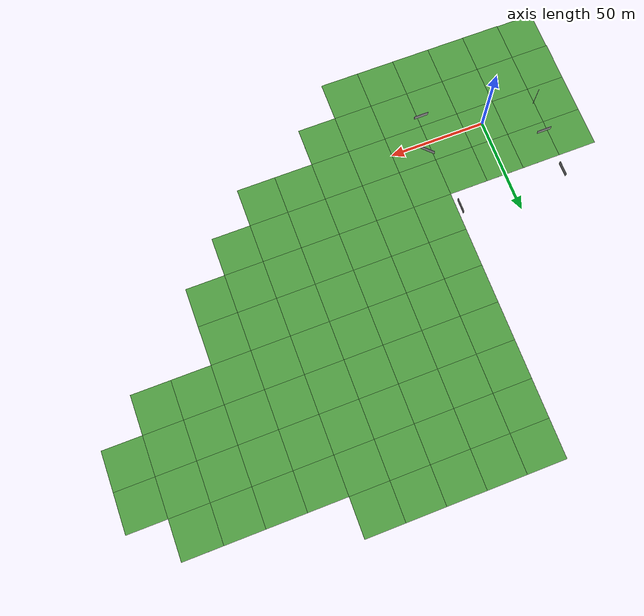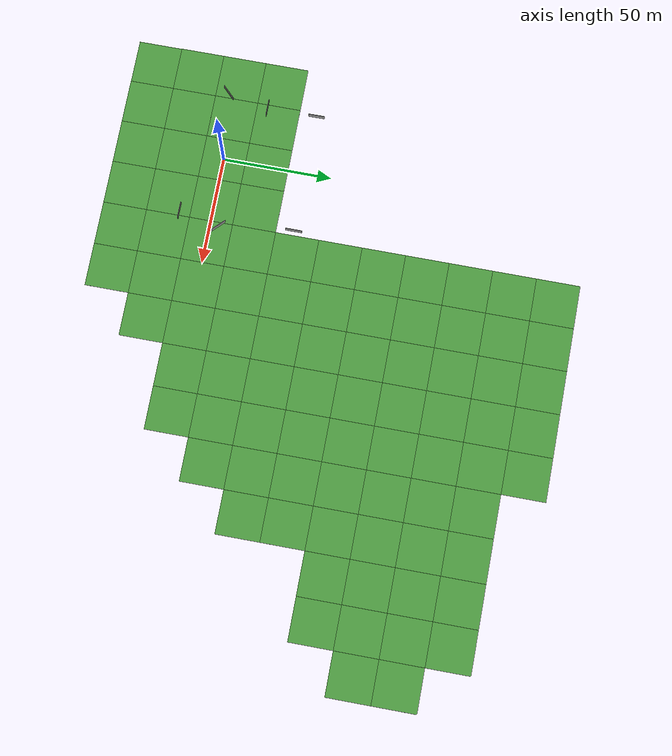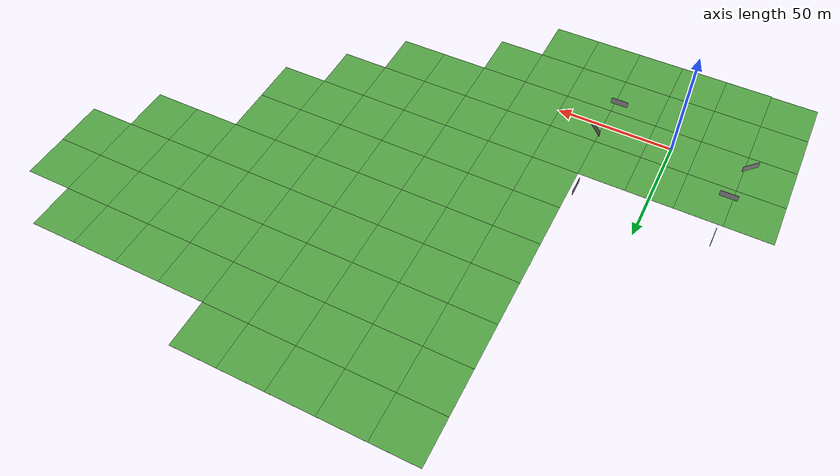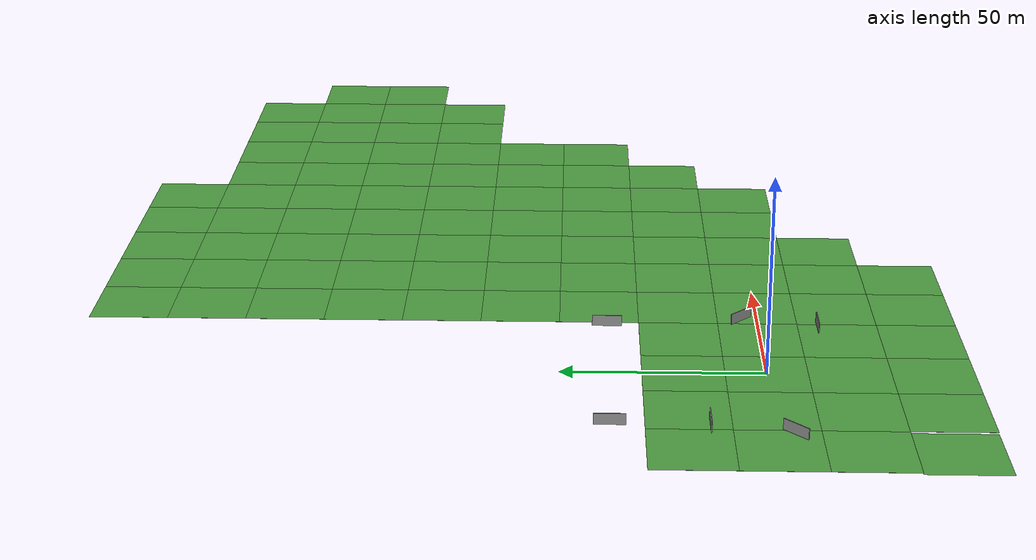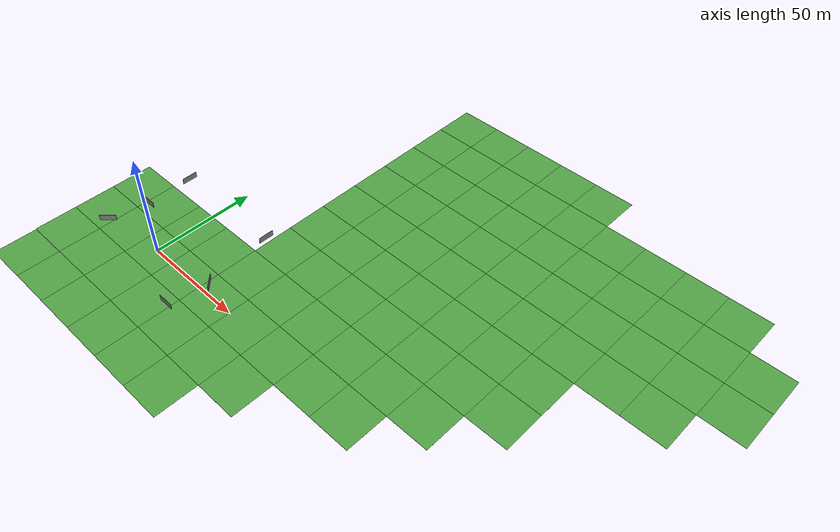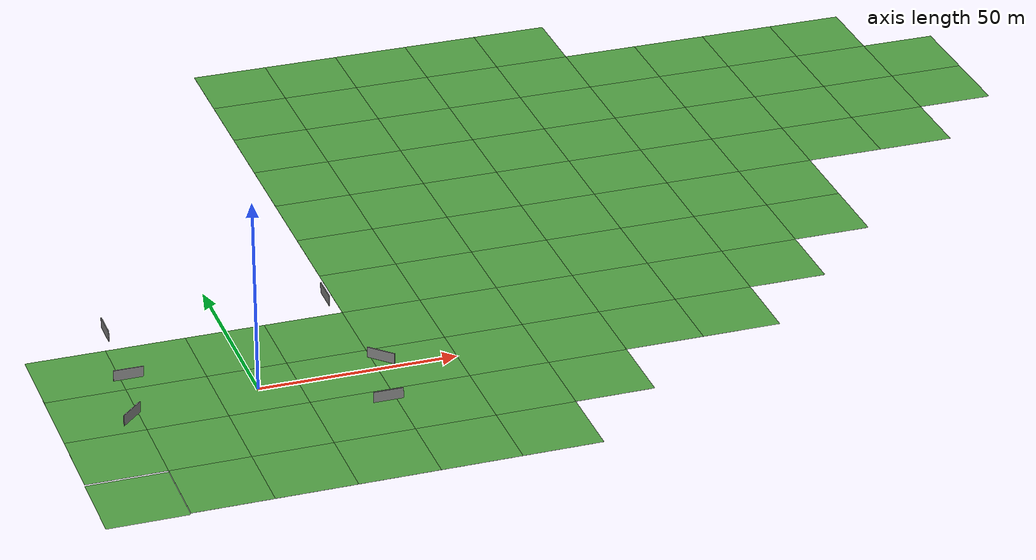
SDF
<sdf version="1.7">
 <world name="mrs_city_simplified">
  <spherical_coordinates>
   <surface_model>EARTH_WGS84</surface_model>
   <latitude_deg>47.3977</latitude_deg>
   <longitude_deg>8.54559</longitude_deg>
   <elevation>0</elevation>
   <heading_deg>0</heading_deg>
  </spherical_coordinates>
  <physics name="default_physics" default="1" type="ode">
   <ode>
    <solver><type>quick</type><iters>10</iters><sor>1.3</sor></solver>
    <constraints>
     <cfm>0</cfm>
     <erp>0.2</erp>
     <contact_max_correcting_vel>1000</contact_max_correcting_vel>
     <contact_surface_layer>0.001</contact_surface_layer>
    </constraints>
   </ode>
   <max_step_size>0.004</max_step_size>
   <real_time_factor>1</real_time_factor>
   <real_time_update_rate>250</real_time_update_rate>
  </physics>
  <scene><shadows>false</shadows><ambient>0.4 0.4 0.4 1</ambient><background>0.7 0.7 0.7 1</background></scene>
  <gravity>0 0 -9.8066</gravity>
  <magnetic_field>6e-06 2.3e-05 -4.2e-05</magnetic_field>
  <atmosphere type="adiabatic"/>
  <light name="sun" type="directional">
   <pose>0 0 1000 0.4 0.2 0</pose>
   <diffuse>1 1 1 1</diffuse>
   <specular>0.6 0.6 0.6 1</specular>
   <direction>0.1 0.1 -0.9</direction>
   <attenuation>
    <range>20</range>
    <constant>0.5</constant>
    <linear>0.01</linear>
    <quadratic>0.001</quadratic>
   </attenuation>
  </light>
  <include><name>grass_plane</name><uri>model://grass_plane</uri></include>
  <include><name>wall_north</name><uri>model://grey_wall</uri><pose>-28 15 0 0 0 0</pose></include>
  <include><name>wall_south</name><uri>model://grey_wall</uri><pose>28 -15 0 0 0 0</pose></include>
  <include><name>wall_west</name><uri>model://grey_wall</uri><pose>-28 38 0 0 0 1.5708</pose></include>
  <include><name>wall_east</name><uri>model://grey_wall</uri><pose>28 38 0 0 0 1.5708</pose></include>
  <include><name>wall_gate_west</name><uri>model://grey_wall</uri><pose>-32 -4 0 0 0 0.7854</pose></include>
  <include><name>wall_gate_east</name><uri>model://grey_wall</uri><pose>32 4 0 0 0 -0.7854</pose></include>
 </world>
</sdf>

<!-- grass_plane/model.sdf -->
<sdf version='1.4'>
  <model name='grass_plane'>
    <static>true</static>
    <link name='link'>
      <collision name='collision'>
        <geometry>
          <plane>
            <normal>0 0 1</normal>
            <size>500 500</size>
          </plane>
        </geometry>
        <surface>
          <friction>
            <ode>
              <mu>0.5</mu>
              <mu2>.5</mu2>
            </ode>
          </friction>
        </surface>
      </collision>

      <visual name='visual_0'>
        <pose>-40 -40 0 0 0 0</pose>

        <cast_shadows>false</cast_shadows>
        <geometry>
          <plane>
            <normal>0 0 1</normal>
            <size>20 20</size>
          </plane>
        </geometry>
        <material>
          <script>
            <uri>model://../model_source/models/grass_plane/materials/scripts</uri>
            <uri>model://../model_source/models/grass_plane/materials/textures</uri>
            <name>vrc/grass</name>
          </script>
        </material>
      </visual>

      <visual name='visual_1'>
        <pose>-20 -40 0 0 0 0</pose>

        <cast_shadows>false</cast_shadows>
        <geometry>
          <plane>
            <normal>0 0 1</normal>
            <size>20 20</size>
          </plane>
        </geometry>
        <material>
          <script>
            <uri>model://../model_source/models/grass_plane/materials/scripts</uri>
            <uri>model://../model_source/models/grass_plane/materials/textures</uri>
            <name>vrc/grass</name>
          </script>
        </material>
      </visual>

      <visual name='visual_2'>
        <pose>0 -40 0 0 0 0</pose>

        <cast_shadows>false</cast_shadows>
        <geometry>
          <plane>
            <normal>0 0 1</normal>
            <size>20 20</size>
          </plane>
        </geometry>
        <material>
          <script>
            <uri>model://../model_source/models/grass_plane/materials/scripts</uri>
            <uri>model://../model_source/models/grass_plane/materials/textures</uri>
            <name>vrc/grass</name>
          </script>
        </material>
      </visual>

      <visual name='visual_3'>
        <pose>20 -40 0 0 0 0</pose>

        <cast_shadows>false</cast_shadows>
        <geometry>
          <plane>
            <normal>0 0 1</normal>
            <size>20 20</size>
          </plane>
        </geometry>
        <material>
          <script>
            <uri>model://../model_source/models/grass_plane/materials/scripts</uri>
            <uri>model://../model_source/models/grass_plane/materials/textures</uri>
            <name>vrc/grass</name>
          </script>
        </material>
      </visual>

      <visual name='visual_4'>
        <pose>40 -40 0 0 0 0</pose>

        <cast_shadows>false</cast_shadows>
        <geometry>
          <plane>
            <normal>0 0 1</normal>
            <size>20 20</size>
          </plane>
        </geometry>
        <material>
          <script>
            <uri>model://../model_source/models/grass_plane/materials/scripts</uri>
            <uri>model://../model_source/models/grass_plane/materials/textures</uri>
            <name>vrc/grass</name>
          </script>
        </material>
      </visual>

      <visual name='visual_5'>
        <pose>60 -40 0 0 0 0</pose>

        <cast_shadows>false</cast_shadows>
        <geometry>
          <plane>
            <normal>0 0 1</normal>
            <size>20 20</size>
          </plane>
        </geometry>
        <material>
          <script>
            <uri>model://../model_source/models/grass_plane/materials/scripts</uri>
            <uri>model://../model_source/models/grass_plane/materials/textures</uri>
            <name>vrc/grass</name>
          </script>
        </material>
      </visual>

      <visual name='visual_6'>
        <pose>-40 -20 0 0 0 0</pose>

        <cast_shadows>false</cast_shadows>
        <geometry>
          <plane>
            <normal>0 0 1</normal>
            <size>20 20</size>
          </plane>
        </geometry>
        <material>
          <script>
            <uri>model://../model_source/models/grass_plane/materials/scripts</uri>
            <uri>model://../model_source/models/grass_plane/materials/textures</uri>
            <name>vrc/grass</name>
          </script>
        </material>
      </visual>

      <visual name='visual_7'>
        <pose>-20 -20 0 0 0 0</pose>

        <cast_shadows>false</cast_shadows>
        <geometry>
          <plane>
            <normal>0 0 1</normal>
            <size>20 20</size>
          </plane>
        </geometry>
        <material>
          <script>
            <uri>model://../model_source/models/grass_plane/materials/scripts</uri>
            <uri>model://../model_source/models/grass_plane/materials/textures</uri>
            <name>vrc/grass</name>
          </script>
        </material>
      </visual>

      <visual name='visual_8'>
        <pose>0 -20 0 0 0 0</pose>

        <cast_shadows>false</cast_shadows>
        <geometry>
          <plane>
            <normal>0 0 1</normal>
            <size>20 20</size>
          </plane>
        </geometry>
        <material>
          <script>
            <uri>model://../model_source/models/grass_plane/materials/scripts</uri>
            <uri>model://../model_source/models/grass_plane/materials/textures</uri>
            <name>vrc/grass</name>
          </script>
        </material>
      </visual>

      <visual name='visual_9'>
        <pose>20 -20 0 0 0 0</pose>

        <cast_shadows>false</cast_shadows>
        <geometry>
          <plane>
            <normal>0 0 1</normal>
            <size>20 20</size>
          </plane>
        </geometry>
        <material>
          <script>
            <uri>model://../model_source/models/grass_plane/materials/scripts</uri>
            <uri>model://../model_source/models/grass_plane/materials/textures</uri>
            <name>vrc/grass</name>
          </script>
        </material>
      </visual>

      <visual name='visual_10'>
        <pose>40 -20 0 0 0 0</pose>

        <cast_shadows>false</cast_shadows>
        <geometry>
          <plane>
            <normal>0 0 1</normal>
            <size>20 20</size>
          </plane>
        </geometry>
        <material>
          <script>
            <uri>model://../model_source/models/grass_plane/materials/scripts</uri>
            <uri>model://../model_source/models/grass_plane/materials/textures</uri>
            <name>vrc/grass</name>
          </script>
        </material>
      </visual>

      <visual name='visual_11'>
        <pose>60 -20 0 0 0 0</pose>

        <cast_shadows>false</cast_shadows>
        <geometry>
          <plane>
            <normal>0 0 1</normal>
            <size>20 20</size>
          </plane>
        </geometry>
        <material>
          <script>
            <uri>model://../model_source/models/grass_plane/materials/scripts</uri>
            <uri>model://../model_source/models/grass_plane/materials/textures</uri>
            <name>vrc/grass</name>
          </script>
        </material>
      </visual>

      <visual name='visual_12'>
        <pose>80 -20 0 0 0 0</pose>

        <cast_shadows>false</cast_shadows>
        <geometry>
          <plane>
            <normal>0 0 1</normal>
            <size>20 20</size>
          </plane>
        </geometry>
        <material>
          <script>
            <uri>model://../model_source/models/grass_plane/materials/scripts</uri>
            <uri>model://../model_source/models/grass_plane/materials/textures</uri>
            <name>vrc/grass</name>
          </script>
        </material>
      </visual>

      <visual name='visual_13'>
        <pose>-40 0 0 0 0 0</pose>

        <cast_shadows>false</cast_shadows>
        <geometry>
          <plane>
            <normal>0 0 1</normal>
            <size>20 20</size>
          </plane>
        </geometry>
        <material>
          <script>
            <uri>model://../model_source/models/grass_plane/materials/scripts</uri>
            <uri>model://../model_source/models/grass_plane/materials/textures</uri>
            <name>vrc/grass</name>
          </script>
        </material>
      </visual>

      <visual name='visual_14'>
        <pose>-20 0 0 0 0 0</pose>

        <cast_shadows>false</cast_shadows>
        <geometry>
          <plane>
            <normal>0 0 1</normal>
            <size>20 20</size>
          </plane>
        </geometry>
        <material>
          <script>
            <uri>model://../model_source/models/grass_plane/materials/scripts</uri>
            <uri>model://../model_source/models/grass_plane/materials/textures</uri>
            <name>vrc/grass</name>
          </script>
        </material>
      </visual>

      <visual name='visual_15'>
        <pose>0 0 0 0 0 0</pose>

        <cast_shadows>false</cast_shadows>
        <geometry>
          <plane>
            <normal>0 0 1</normal>
            <size>20 20</size>
          </plane>
        </geometry>
        <material>
          <script>
            <uri>model://../model_source/models/grass_plane/materials/scripts</uri>
            <uri>model://../model_source/models/grass_plane/materials/textures</uri>
            <name>vrc/grass</name>
          </script>
        </material>
      </visual>

      <visual name='visual_16'>
        <pose>20 0 0 0 0 0</pose>

        <cast_shadows>false</cast_shadows>
        <geometry>
          <plane>
            <normal>0 0 1</normal>
            <size>20 20</size>
          </plane>
        </geometry>
        <material>
          <script>
            <uri>model://../model_source/models/grass_plane/materials/scripts</uri>
            <uri>model://../model_source/models/grass_plane/materials/textures</uri>
            <name>vrc/grass</name>
          </script>
        </material>
      </visual>

      <visual name='visual_17'>
        <pose>40 0 0 0 0 0</pose>

        <cast_shadows>false</cast_shadows>
        <geometry>
          <plane>
            <normal>0 0 1</normal>
            <size>20 20</size>
          </plane>
        </geometry>
        <material>
          <script>
            <uri>model://../model_source/models/grass_plane/materials/scripts</uri>
            <uri>model://../model_source/models/grass_plane/materials/textures</uri>
            <name>vrc/grass</name>
          </script>
        </material>
      </visual>

      <visual name='visual_18'>
        <pose>60 0 0 0 0 0</pose>

        <cast_shadows>false</cast_shadows>
        <geometry>
          <plane>
            <normal>0 0 1</normal>
            <size>20 20</size>
          </plane>
        </geometry>
        <material>
          <script>
            <uri>model://../model_source/models/grass_plane/materials/scripts</uri>
            <uri>model://../model_source/models/grass_plane/materials/textures</uri>
            <name>vrc/grass</name>
          </script>
        </material>
      </visual>

      <visual name='visual_19'>
        <pose>80 0 0 0 0 0</pose>

        <cast_shadows>false</cast_shadows>
        <geometry>
          <plane>
            <normal>0 0 1</normal>
            <size>20 20</size>
          </plane>
        </geometry>
        <material>
          <script>
            <uri>model://../model_source/models/grass_plane/materials/scripts</uri>
            <uri>model://../model_source/models/grass_plane/materials/textures</uri>
            <name>vrc/grass</name>
          </script>
        </material>
      </visual>

      <visual name='visual_20'>
        <pose>100 0 0 0 0 0</pose>

        <cast_shadows>false</cast_shadows>
        <geometry>
          <plane>
            <normal>0 0 1</normal>
            <size>20 20</size>
          </plane>
        </geometry>
        <material>
          <script>
            <uri>model://../model_source/models/grass_plane/materials/scripts</uri>
            <uri>model://../model_source/models/grass_plane/materials/textures</uri>
            <name>vrc/grass</name>
          </script>
        </material>
      </visual>

      <visual name='visual_21'>
        <pose>120 0 0 0 0 0</pose>

        <cast_shadows>false</cast_shadows>
        <geometry>
          <plane>
            <normal>0 0 1</normal>
            <size>20 20</size>
          </plane>
        </geometry>
        <material>
          <script>
            <uri>model://../model_source/models/grass_plane/materials/scripts</uri>
            <uri>model://../model_source/models/grass_plane/materials/textures</uri>
            <name>vrc/grass</name>
          </script>
        </material>
      </visual>

      <visual name='visual_22'>
        <pose>-40 20 0 0 0 0</pose>

        <cast_shadows>false</cast_shadows>
        <geometry>
          <plane>
            <normal>0 0 1</normal>
            <size>20 20</size>
          </plane>
        </geometry>
        <material>
          <script>
            <uri>model://../model_source/models/grass_plane/materials/scripts</uri>
            <uri>model://../model_source/models/grass_plane/materials/textures</uri>
            <name>vrc/grass</name>
          </script>
        </material>
      </visual>

      <visual name='visual_23'>
        <pose>-20 20 0 0 0 0</pose>

        <cast_shadows>false</cast_shadows>
        <geometry>
          <plane>
            <normal>0 0 1</normal>
            <size>20 20</size>
          </plane>
        </geometry>
        <material>
          <script>
            <uri>model://../model_source/models/grass_plane/materials/scripts</uri>
            <uri>model://../model_source/models/grass_plane/materials/textures</uri>
            <name>vrc/grass</name>
          </script>
        </material>
      </visual>

      <visual name='visual_24'>
        <pose>0 20 0 0 0 0</pose>

        <cast_shadows>false</cast_shadows>
        <geometry>
          <plane>
            <normal>0 0 1</normal>
            <size>20 20</size>
          </plane>
        </geometry>
        <material>
          <script>
            <uri>model://../model_source/models/grass_plane/materials/scripts</uri>
            <uri>model://../model_source/models/grass_plane/materials/textures</uri>
            <name>vrc/grass</name>
          </script>
        </material>
      </visual>

      <visual name='visual_25'>
        <pose>20 20 0 0 0 0</pose>

        <cast_shadows>false</cast_shadows>
        <geometry>
          <plane>
            <normal>0 0 1</normal>
            <size>20 20</size>
          </plane>
        </geometry>
        <material>
          <script>
            <uri>model://../model_source/models/grass_plane/materials/scripts</uri>
            <uri>model://../model_source/models/grass_plane/materials/textures</uri>
            <name>vrc/grass</name>
          </script>
        </material>
      </visual>

      <visual name='visual_26'>
        <pose>40 20 0 0 0 0</pose>

        <cast_shadows>false</cast_shadows>
        <geometry>
          <plane>
            <normal>0 0 1</normal>
            <size>20 20</size>
          </plane>
        </geometry>
        <material>
          <script>
            <uri>model://../model_source/models/grass_plane/materials/scripts</uri>
            <uri>model://../model_source/models/grass_plane/materials/textures</uri>
            <name>vrc/grass</name>
          </script>
        </material>
      </visual>

      <visual name='visual_27'>
        <pose>60 20 0 0 0 0</pose>

        <cast_shadows>false</cast_shadows>
        <geometry>
          <plane>
            <normal>0 0 1</normal>
            <size>20 20</size>
          </plane>
        </geometry>
        <material>
          <script>
            <uri>model://../model_source/models/grass_plane/materials/scripts</uri>
            <uri>model://../model_source/models/grass_plane/materials/textures</uri>
            <name>vrc/grass</name>
          </script>
        </material>
      </visual>

      <visual name='visual_28'>
        <pose>80 20 0 0 0 0</pose>

        <cast_shadows>false</cast_shadows>
        <geometry>
          <plane>
            <normal>0 0 1</normal>
            <size>20 20</size>
          </plane>
        </geometry>
        <material>
          <script>
            <uri>model://../model_source/models/grass_plane/materials/scripts</uri>
            <uri>model://../model_source/models/grass_plane/materials/textures</uri>
            <name>vrc/grass</name>
          </script>
        </material>
      </visual>

      <visual name='visual_29'>
        <pose>100 20 0 0 0 0</pose>

        <cast_shadows>false</cast_shadows>
        <geometry>
          <plane>
            <normal>0 0 1</normal>
            <size>20 20</size>
          </plane>
        </geometry>
        <material>
          <script>
            <uri>model://../model_source/models/grass_plane/materials/scripts</uri>
            <uri>model://../model_source/models/grass_plane/materials/textures</uri>
            <name>vrc/grass</name>
          </script>
        </material>
      </visual>

      <visual name='visual_30'>
        <pose>120 20 0 0 0 0</pose>

        <cast_shadows>false</cast_shadows>
        <geometry>
          <plane>
            <normal>0 0 1</normal>
            <size>20 20</size>
          </plane>
        </geometry>
        <material>
          <script>
            <uri>model://../model_source/models/grass_plane/materials/scripts</uri>
            <uri>model://../model_source/models/grass_plane/materials/textures</uri>
            <name>vrc/grass</name>
          </script>
        </material>
      </visual>

      <visual name='visual_31'>
        <pose>140 20 0 0 0 0</pose>

        <cast_shadows>false</cast_shadows>
        <geometry>
          <plane>
            <normal>0 0 1</normal>
            <size>20 20</size>
          </plane>
        </geometry>
        <material>
          <script>
            <uri>model://../model_source/models/grass_plane/materials/scripts</uri>
            <uri>model://../model_source/models/grass_plane/materials/textures</uri>
            <name>vrc/grass</name>
          </script>
        </material>
      </visual>

      <visual name='visual_32'>
        <pose>40 40 0 0 0 0</pose>

        <cast_shadows>false</cast_shadows>
        <geometry>
          <plane>
            <normal>0 0 1</normal>
            <size>20 20</size>
          </plane>
        </geometry>
        <material>
          <script>
            <uri>model://../model_source/models/grass_plane/materials/scripts</uri>
            <uri>model://../model_source/models/grass_plane/materials/textures</uri>
            <name>vrc/grass</name>
          </script>
        </material>
      </visual>

      <visual name='visual_33'>
        <pose>60 40 0 0 0 0</pose>

        <cast_shadows>false</cast_shadows>
        <geometry>
          <plane>
            <normal>0 0 1</normal>
            <size>20 20</size>
          </plane>
        </geometry>
        <material>
          <script>
            <uri>model://../model_source/models/grass_plane/materials/scripts</uri>
            <uri>model://../model_source/models/grass_plane/materials/textures</uri>
            <name>vrc/grass</name>
          </script>
        </material>
      </visual>

      <visual name='visual_34'>
        <pose>80 40 0 0 0 0</pose>

        <cast_shadows>false</cast_shadows>
        <geometry>
          <plane>
            <normal>0 0 1</normal>
            <size>20 20</size>
          </plane>
        </geometry>
        <material>
          <script>
            <uri>model://../model_source/models/grass_plane/materials/scripts</uri>
            <uri>model://../model_source/models/grass_plane/materials/textures</uri>
            <name>vrc/grass</name>
          </script>
        </material>
      </visual>

      <visual name='visual_35'>
        <pose>100 40 0 0 0 0</pose>

        <cast_shadows>false</cast_shadows>
        <geometry>
          <plane>
            <normal>0 0 1</normal>
            <size>20 20</size>
          </plane>
        </geometry>
        <material>
          <script>
            <uri>model://../model_source/models/grass_plane/materials/scripts</uri>
            <uri>model://../model_source/models/grass_plane/materials/textures</uri>
            <name>vrc/grass</name>
          </script>
        </material>
      </visual>

      <visual name='visual_36'>
        <pose>120 40 0 0 0 0</pose>

        <cast_shadows>false</cast_shadows>
        <geometry>
          <plane>
            <normal>0 0 1</normal>
            <size>20 20</size>
          </plane>
        </geometry>
        <material>
          <script>
            <uri>model://../model_source/models/grass_plane/materials/scripts</uri>
            <uri>model://../model_source/models/grass_plane/materials/textures</uri>
            <name>vrc/grass</name>
          </script>
        </material>
      </visual>

      <visual name='visual_37'>
        <pose>140 40 0 0 0 0</pose>

        <cast_shadows>false</cast_shadows>
        <geometry>
          <plane>
            <normal>0 0 1</normal>
            <size>20 20</size>
          </plane>
        </geometry>
        <material>
          <script>
            <uri>model://../model_source/models/grass_plane/materials/scripts</uri>
            <uri>model://../model_source/models/grass_plane/materials/textures</uri>
            <name>vrc/grass</name>
          </script>
        </material>
      </visual>

      <visual name='visual_38'>
        <pose>160 40 0 0 0 0</pose>

        <cast_shadows>false</cast_shadows>
        <geometry>
          <plane>
            <normal>0 0 1</normal>
            <size>20 20</size>
          </plane>
        </geometry>
        <material>
          <script>
            <uri>model://../model_source/models/grass_plane/materials/scripts</uri>
            <uri>model://../model_source/models/grass_plane/materials/textures</uri>
            <name>vrc/grass</name>
          </script>
        </material>
      </visual>

      <visual name='visual_39'>
        <pose>40 60 0 0 0 0</pose>

        <cast_shadows>false</cast_shadows>
        <geometry>
          <plane>
            <normal>0 0 1</normal>
            <size>20 20</size>
          </plane>
        </geometry>
        <material>
          <script>
            <uri>model://../model_source/models/grass_plane/materials/scripts</uri>
            <uri>model://../model_source/models/grass_plane/materials/textures</uri>
            <name>vrc/grass</name>
          </script>
        </material>
      </visual>

      <visual name='visual_40'>
        <pose>60 60 0 0 0 0</pose>

        <cast_shadows>false</cast_shadows>
        <geometry>
          <plane>
            <normal>0 0 1</normal>
            <size>20 20</size>
          </plane>
        </geometry>
        <material>
          <script>
            <uri>model://../model_source/models/grass_plane/materials/scripts</uri>
            <uri>model://../model_source/models/grass_plane/materials/textures</uri>
            <name>vrc/grass</name>
          </script>
        </material>
      </visual>

      <visual name='visual_41'>
        <pose>80 60 0 0 0 0</pose>

        <cast_shadows>false</cast_shadows>
        <geometry>
          <plane>
            <normal>0 0 1</normal>
            <size>20 20</size>
          </plane>
        </geometry>
        <material>
          <script>
            <uri>model://../model_source/models/grass_plane/materials/scripts</uri>
            <uri>model://../model_source/models/grass_plane/materials/textures</uri>
            <name>vrc/grass</name>
          </script>
        </material>
      </visual>

      <visual name='visual_42'>
        <pose>100 60 0 0 0 0</pose>

        <cast_shadows>false</cast_shadows>
        <geometry>
          <plane>
            <normal>0 0 1</normal>
            <size>20 20</size>
          </plane>
        </geometry>
        <material>
          <script>
            <uri>model://../model_source/models/grass_plane/materials/scripts</uri>
            <uri>model://../model_source/models/grass_plane/materials/textures</uri>
            <name>vrc/grass</name>
          </script>
        </material>
      </visual>

      <visual name='visual_43'>
        <pose>120 60 0 0 0 0</pose>

        <cast_shadows>false</cast_shadows>
        <geometry>
          <plane>
            <normal>0 0 1</normal>
            <size>20 20</size>
          </plane>
        </geometry>
        <material>
          <script>
            <uri>model://../model_source/models/grass_plane/materials/scripts</uri>
            <uri>model://../model_source/models/grass_plane/materials/textures</uri>
            <name>vrc/grass</name>
          </script>
        </material>
      </visual>

      <visual name='visual_44'>
        <pose>140 60 0 0 0 0</pose>

        <cast_shadows>false</cast_shadows>
        <geometry>
          <plane>
            <normal>0 0 1</normal>
            <size>20 20</size>
          </plane>
        </geometry>
        <material>
          <script>
            <uri>model://../model_source/models/grass_plane/materials/scripts</uri>
            <uri>model://../model_source/models/grass_plane/materials/textures</uri>
            <name>vrc/grass</name>
          </script>
        </material>
      </visual>

      <visual name='visual_45'>
        <pose>160 60 0 0 0 0</pose>

        <cast_shadows>false</cast_shadows>
        <geometry>
          <plane>
            <normal>0 0 1</normal>
            <size>20 20</size>
          </plane>
        </geometry>
        <material>
          <script>
            <uri>model://../model_source/models/grass_plane/materials/scripts</uri>
            <uri>model://../model_source/models/grass_plane/materials/textures</uri>
            <name>vrc/grass</name>
          </script>
        </material>
      </visual>

      <visual name='visual_46'>
        <pose>40 80 0 0 0 0</pose>

        <cast_shadows>false</cast_shadows>
        <geometry>
          <plane>
            <normal>0 0 1</normal>
            <size>20 20</size>
          </plane>
        </geometry>
        <material>
          <script>
            <uri>model://../model_source/models/grass_plane/materials/scripts</uri>
            <uri>model://../model_source/models/grass_plane/materials/textures</uri>
            <name>vrc/grass</name>
          </script>
        </material>
      </visual>

      <visual name='visual_47'>
        <pose>60 80 0 0 0 0</pose>

        <cast_shadows>false</cast_shadows>
        <geometry>
          <plane>
            <normal>0 0 1</normal>
            <size>20 20</size>
          </plane>
        </geometry>
        <material>
          <script>
            <uri>model://../model_source/models/grass_plane/materials/scripts</uri>
            <uri>model://../model_source/models/grass_plane/materials/textures</uri>
            <name>vrc/grass</name>
          </script>
        </material>
      </visual>

      <visual name='visual_48'>
        <pose>80 80 0 0 0 0</pose>

        <cast_shadows>false</cast_shadows>
        <geometry>
          <plane>
            <normal>0 0 1</normal>
            <size>20 20</size>
          </plane>
        </geometry>
        <material>
          <script>
            <uri>model://../model_source/models/grass_plane/materials/scripts</uri>
            <uri>model://../model_source/models/grass_plane/materials/textures</uri>
            <name>vrc/grass</name>
          </script>
        </material>
      </visual>

      <visual name='visual_49'>
        <pose>100 80 0 0 0 0</pose>

        <cast_shadows>false</cast_shadows>
        <geometry>
          <plane>
            <normal>0 0 1</normal>
            <size>20 20</size>
          </plane>
        </geometry>
        <material>
          <script>
            <uri>model://../model_source/models/grass_plane/materials/scripts</uri>
            <uri>model://../model_source/models/grass_plane/materials/textures</uri>
            <name>vrc/grass</name>
          </script>
        </material>
      </visual>

      <visual name='visual_50'>
        <pose>120 80 0 0 0 0</pose>

        <cast_shadows>false</cast_shadows>
        <geometry>
          <plane>
            <normal>0 0 1</normal>
            <size>20 20</size>
          </plane>
        </geometry>
        <material>
          <script>
            <uri>model://../model_source/models/grass_plane/materials/scripts</uri>
            <uri>model://../model_source/models/grass_plane/materials/textures</uri>
            <name>vrc/grass</name>
          </script>
        </material>
      </visual>

      <visual name='visual_51'>
        <pose>140 80 0 0 0 0</pose>

        <cast_shadows>false</cast_shadows>
        <geometry>
          <plane>
            <normal>0 0 1</normal>
            <size>20 20</size>
          </plane>
        </geometry>
        <material>
          <script>
            <uri>model://../model_source/models/grass_plane/materials/scripts</uri>
            <uri>model://../model_source/models/grass_plane/materials/textures</uri>
            <name>vrc/grass</name>
          </script>
        </material>
      </visual>

      <visual name='visual_52'>
        <pose>160 80 0 0 0 0</pose>

        <cast_shadows>false</cast_shadows>
        <geometry>
          <plane>
            <normal>0 0 1</normal>
            <size>20 20</size>
          </plane>
        </geometry>
        <material>
          <script>
            <uri>model://../model_source/models/grass_plane/materials/scripts</uri>
            <uri>model://../model_source/models/grass_plane/materials/textures</uri>
            <name>vrc/grass</name>
          </script>
        </material>
      </visual>

      <visual name='visual_53'>
        <pose>180 80 0 0 0 0</pose>

        <cast_shadows>false</cast_shadows>
        <geometry>
          <plane>
            <normal>0 0 1</normal>
            <size>20 20</size>
          </plane>
        </geometry>
        <material>
          <script>
            <uri>model://../model_source/models/grass_plane/materials/scripts</uri>
            <uri>model://../model_source/models/grass_plane/materials/textures</uri>
            <name>vrc/grass</name>
          </script>
        </material>
      </visual>

      <visual name='visual_54'>
        <pose>200 80 0 0 0 0</pose>

        <cast_shadows>false</cast_shadows>
        <geometry>
          <plane>
            <normal>0 0 1</normal>
            <size>20 20</size>
          </plane>
        </geometry>
        <material>
          <script>
            <uri>model://../model_source/models/grass_plane/materials/scripts</uri>
            <uri>model://../model_source/models/grass_plane/materials/textures</uri>
            <name>vrc/grass</name>
          </script>
        </material>
      </visual>

      <visual name='visual_55'>
        <pose>40 100 0 0 0 0</pose>

        <cast_shadows>false</cast_shadows>
        <geometry>
          <plane>
            <normal>0 0 1</normal>
            <size>20 20</size>
          </plane>
        </geometry>
        <material>
          <script>
            <uri>model://../model_source/models/grass_plane/materials/scripts</uri>
            <uri>model://../model_source/models/grass_plane/materials/textures</uri>
            <name>vrc/grass</name>
          </script>
        </material>
      </visual>

      <visual name='visual_56'>
        <pose>60 100 0 0 0 0</pose>

        <cast_shadows>false</cast_shadows>
        <geometry>
          <plane>
            <normal>0 0 1</normal>
            <size>20 20</size>
          </plane>
        </geometry>
        <material>
          <script>
            <uri>model://../model_source/models/grass_plane/materials/scripts</uri>
            <uri>model://../model_source/models/grass_plane/materials/textures</uri>
            <name>vrc/grass</name>
          </script>
        </material>
      </visual>

      <visual name='visual_57'>
        <pose>80 100 0 0 0 0</pose>

        <cast_shadows>false</cast_shadows>
        <geometry>
          <plane>
            <normal>0 0 1</normal>
            <size>20 20</size>
          </plane>
        </geometry>
        <material>
          <script>
            <uri>model://../model_source/models/grass_plane/materials/scripts</uri>
            <uri>model://../model_source/models/grass_plane/materials/textures</uri>
            <name>vrc/grass</name>
          </script>
        </material>
      </visual>

      <visual name='visual_58'>
        <pose>100 100 0 0 0 0</pose>

        <cast_shadows>false</cast_shadows>
        <geometry>
          <plane>
            <normal>0 0 1</normal>
            <size>20 20</size>
          </plane>
        </geometry>
        <material>
          <script>
            <uri>model://../model_source/models/grass_plane/materials/scripts</uri>
            <uri>model://../model_source/models/grass_plane/materials/textures</uri>
            <name>vrc/grass</name>
          </script>
        </material>
      </visual>

      <visual name='visual_59'>
        <pose>120 100 0 0 0 0</pose>

        <cast_shadows>false</cast_shadows>
        <geometry>
          <plane>
            <normal>0 0 1</normal>
            <size>20 20</size>
          </plane>
        </geometry>
        <material>
          <script>
            <uri>model://../model_source/models/grass_plane/materials/scripts</uri>
            <uri>model://../model_source/models/grass_plane/materials/textures</uri>
            <name>vrc/grass</name>
          </script>
        </material>
      </visual>

      <visual name='visual_60'>
        <pose>140 100 0 0 0 0</pose>

        <cast_shadows>false</cast_shadows>
        <geometry>
          <plane>
            <normal>0 0 1</normal>
            <size>20 20</size>
          </plane>
        </geometry>
        <material>
          <script>
            <uri>model://../model_source/models/grass_plane/materials/scripts</uri>
            <uri>model://../model_source/models/grass_plane/materials/textures</uri>
            <name>vrc/grass</name>
          </script>
        </material>
      </visual>

      <visual name='visual_61'>
        <pose>160 100 0 0 0 0</pose>

        <cast_shadows>false</cast_shadows>
        <geometry>
          <plane>
            <normal>0 0 1</normal>
            <size>20 20</size>
          </plane>
        </geometry>
        <material>
          <script>
            <uri>model://../model_source/models/grass_plane/materials/scripts</uri>
            <uri>model://../model_source/models/grass_plane/materials/textures</uri>
            <name>vrc/grass</name>
          </script>
        </material>
      </visual>

      <visual name='visual_62'>
        <pose>180 100 0 0 0 0</pose>

        <cast_shadows>false</cast_shadows>
        <geometry>
          <plane>
            <normal>0 0 1</normal>
            <size>20 20</size>
          </plane>
        </geometry>
        <material>
          <script>
            <uri>model://../model_source/models/grass_plane/materials/scripts</uri>
            <uri>model://../model_source/models/grass_plane/materials/textures</uri>
            <name>vrc/grass</name>
          </script>
        </material>
      </visual>

      <visual name='visual_63'>
        <pose>200 100 0 0 0 0</pose>

        <cast_shadows>false</cast_shadows>
        <geometry>
          <plane>
            <normal>0 0 1</normal>
            <size>20 20</size>
          </plane>
        </geometry>
        <material>
          <script>
            <uri>model://../model_source/models/grass_plane/materials/scripts</uri>
            <uri>model://../model_source/models/grass_plane/materials/textures</uri>
            <name>vrc/grass</name>
          </script>
        </material>
      </visual>

      <visual name='visual_63a'>
        <pose>220 100 0 0 0 0</pose>

        <cast_shadows>false</cast_shadows>
        <geometry>
          <plane>
            <normal>0 0 1</normal>
            <size>20 20</size>
          </plane>
        </geometry>
        <material>
          <script>
            <uri>model://../model_source/models/grass_plane/materials/scripts</uri>
            <uri>model://../model_source/models/grass_plane/materials/textures</uri>
            <name>vrc/grass</name>
          </script>
        </material>
      </visual>

      <visual name='visual_64'>
        <pose>40 120 0 0 0 0</pose>

        <cast_shadows>false</cast_shadows>
        <geometry>
          <plane>
            <normal>0 0 1</normal>
            <size>20 20</size>
          </plane>
        </geometry>
        <material>
          <script>
            <uri>model://../model_source/models/grass_plane/materials/scripts</uri>
            <uri>model://../model_source/models/grass_plane/materials/textures</uri>
            <name>vrc/grass</name>
          </script>
        </material>
      </visual>

      <visual name='visual_65'>
        <pose>60 120 0 0 0 0</pose>

        <cast_shadows>false</cast_shadows>
        <geometry>
          <plane>
            <normal>0 0 1</normal>
            <size>20 20</size>
          </plane>
        </geometry>
        <material>
          <script>
            <uri>model://../model_source/models/grass_plane/materials/scripts</uri>
            <uri>model://../model_source/models/grass_plane/materials/textures</uri>
            <name>vrc/grass</name>
          </script>
        </material>
      </visual>

      <visual name='visual_66'>
        <pose>80 120 0 0 0 0</pose>

        <cast_shadows>false</cast_shadows>
        <geometry>
          <plane>
            <normal>0 0 1</normal>
            <size>20 20</size>
          </plane>
        </geometry>
        <material>
          <script>
            <uri>model://../model_source/models/grass_plane/materials/scripts</uri>
            <uri>model://../model_source/models/grass_plane/materials/textures</uri>
            <name>vrc/grass</name>
          </script>
        </material>
      </visual>

      <visual name='visual_67'>
        <pose>100 120 0 0 0 0</pose>

        <cast_shadows>false</cast_shadows>
        <geometry>
          <plane>
            <normal>0 0 1</normal>
            <size>20 20</size>
          </plane>
        </geometry>
        <material>
          <script>
            <uri>model://../model_source/models/grass_plane/materials/scripts</uri>
            <uri>model://../model_source/models/grass_plane/materials/textures</uri>
            <name>vrc/grass</name>
          </script>
        </material>
      </visual>

      <visual name='visual_68'>
        <pose>120 120 0 0 0 0</pose>

        <cast_shadows>false</cast_shadows>
        <geometry>
          <plane>
            <normal>0 0 1</normal>
            <size>20 20</size>
          </plane>
        </geometry>
        <material>
          <script>
            <uri>model://../model_source/models/grass_plane/materials/scripts</uri>
            <uri>model://../model_source/models/grass_plane/materials/textures</uri>
            <name>vrc/grass</name>
          </script>
        </material>
      </visual>

      <visual name='visual_69'>
        <pose>140 120 0 0 0 0</pose>

        <cast_shadows>false</cast_shadows>
        <geometry>
          <plane>
            <normal>0 0 1</normal>
            <size>20 20</size>
          </plane>
        </geometry>
        <material>
          <script>
            <uri>model://../model_source/models/grass_plane/materials/scripts</uri>
            <uri>model://../model_source/models/grass_plane/materials/textures</uri>
            <name>vrc/grass</name>
          </script>
        </material>
      </visual>

      <visual name='visual_70'>
        <pose>160 120 0 0 0 0</pose>

        <cast_shadows>false</cast_shadows>
        <geometry>
          <plane>
            <normal>0 0 1</normal>
            <size>20 20</size>
          </plane>
        </geometry>
        <material>
          <script>
            <uri>model://../model_source/models/grass_plane/materials/scripts</uri>
            <uri>model://../model_source/models/grass_plane/materials/textures</uri>
            <name>vrc/grass</name>
          </script>
        </material>
      </visual>

      <visual name='visual_71'>
        <pose>180 120 0 0 0 0</pose>

        <cast_shadows>false</cast_shadows>
        <geometry>
          <plane>
            <normal>0 0 1</normal>
            <size>20 20</size>
          </plane>
        </geometry>
        <material>
          <script>
            <uri>model://../model_source/models/grass_plane/materials/scripts</uri>
            <uri>model://../model_source/models/grass_plane/materials/textures</uri>
            <name>vrc/grass</name>
          </script>
        </material>
      </visual>

      <visual name='visual_72'>
        <pose>200 120 0 0 0 0</pose>

        <cast_shadows>false</cast_shadows>
        <geometry>
          <plane>
            <normal>0 0 1</normal>
            <size>20 20</size>
          </plane>
        </geometry>
        <material>
          <script>
            <uri>model://../model_source/models/grass_plane/materials/scripts</uri>
            <uri>model://../model_source/models/grass_plane/materials/textures</uri>
            <name>vrc/grass</name>
          </script>
        </material>
      </visual>

      <visual name='visual_72a'>
        <pose>220 120 0 0 0 0</pose>

        <cast_shadows>false</cast_shadows>
        <geometry>
          <plane>
            <normal>0 0 1</normal>
            <size>20 20</size>
          </plane>
        </geometry>
        <material>
          <script>
            <uri>model://../model_source/models/grass_plane/materials/scripts</uri>
            <uri>model://../model_source/models/grass_plane/materials/textures</uri>
            <name>vrc/grass</name>
          </script>
        </material>
      </visual>

      <visual name='visual_73'>
        <pose>40 140 0 0 0 0</pose>

        <cast_shadows>false</cast_shadows>
        <geometry>
          <plane>
            <normal>0 0 1</normal>
            <size>20 20</size>
          </plane>
        </geometry>
        <material>
          <script>
            <uri>model://../model_source/models/grass_plane/materials/scripts</uri>
            <uri>model://../model_source/models/grass_plane/materials/textures</uri>
            <name>vrc/grass</name>
          </script>
        </material>
      </visual>

      <visual name='visual_74'>
        <pose>60 140 0 0 0 0</pose>

        <cast_shadows>false</cast_shadows>
        <geometry>
          <plane>
            <normal>0 0 1</normal>
            <size>20 20</size>
          </plane>
        </geometry>
        <material>
          <script>
            <uri>model://../model_source/models/grass_plane/materials/scripts</uri>
            <uri>model://../model_source/models/grass_plane/materials/textures</uri>
            <name>vrc/grass</name>
          </script>
        </material>
      </visual>

      <visual name='visual_75'>
        <pose>80 140 0 0 0 0</pose>

        <cast_shadows>false</cast_shadows>
        <geometry>
          <plane>
            <normal>0 0 1</normal>
            <size>20 20</size>
          </plane>
        </geometry>
        <material>
          <script>
            <uri>model://../model_source/models/grass_plane/materials/scripts</uri>
            <uri>model://../model_source/models/grass_plane/materials/textures</uri>
            <name>vrc/grass</name>
          </script>
        </material>
      </visual>

      <visual name='visual_76'>
        <pose>100 140 0 0 0 0</pose>

        <cast_shadows>false</cast_shadows>
        <geometry>
          <plane>
            <normal>0 0 1</normal>
            <size>20 20</size>
          </plane>
        </geometry>
        <material>
          <script>
            <uri>model://../model_source/models/grass_plane/materials/scripts</uri>
            <uri>model://../model_source/models/grass_plane/materials/textures</uri>
            <name>vrc/grass</name>
          </script>
        </material>
      </visual>

      <visual name='visual_77'>
        <pose>120 140 0 0 0 0</pose>

        <cast_shadows>false</cast_shadows>
        <geometry>
          <plane>
            <normal>0 0 1</normal>
            <size>20 20</size>
          </plane>
        </geometry>
        <material>
          <script>
            <uri>model://../model_source/models/grass_plane/materials/scripts</uri>
            <uri>model://../model_source/models/grass_plane/materials/textures</uri>
            <name>vrc/grass</name>
          </script>
        </material>
      </visual>

      <visual name='visual_78'>
        <pose>140 140 0 0 0 0</pose>

        <cast_shadows>false</cast_shadows>
        <geometry>
          <plane>
            <normal>0 0 1</normal>
            <size>20 20</size>
          </plane>
        </geometry>
        <material>
          <script>
            <uri>model://../model_source/models/grass_plane/materials/scripts</uri>
            <uri>model://../model_source/models/grass_plane/materials/textures</uri>
            <name>vrc/grass</name>
          </script>
        </material>
      </visual>

      <visual name='visual_79'>
        <pose>160 140 0 0 0 0</pose>

        <cast_shadows>false</cast_shadows>
        <geometry>
          <plane>
            <normal>0 0 1</normal>
            <size>20 20</size>
          </plane>
        </geometry>
        <material>
          <script>
            <uri>model://../model_source/models/grass_plane/materials/scripts</uri>
            <uri>model://../model_source/models/grass_plane/materials/textures</uri>
            <name>vrc/grass</name>
          </script>
        </material>
      </visual>

      <visual name='visual_80'>
        <pose>180 140 0 0 0 0</pose>

        <cast_shadows>false</cast_shadows>
        <geometry>
          <plane>
            <normal>0 0 1</normal>
            <size>20 20</size>
          </plane>
        </geometry>
        <material>
          <script>
            <uri>model://../model_source/models/grass_plane/materials/scripts</uri>
            <uri>model://../model_source/models/grass_plane/materials/textures</uri>
            <name>vrc/grass</name>
          </script>
        </material>
      </visual>

      <visual name='visual_81'>
        <pose>200 140 0 0 0 0</pose>

        <cast_shadows>false</cast_shadows>
        <geometry>
          <plane>
            <normal>0 0 1</normal>
            <size>20 20</size>
          </plane>
        </geometry>
        <material>
          <script>
            <uri>model://../model_source/models/grass_plane/materials/scripts</uri>
            <uri>model://../model_source/models/grass_plane/materials/textures</uri>
            <name>vrc/grass</name>
          </script>
        </material>
      </visual>

      <visual name='visual_82'>
        <pose>40 160 0 0 0 0</pose>

        <cast_shadows>false</cast_shadows>
        <geometry>
          <plane>
            <normal>0 0 1</normal>
            <size>20 20</size>
          </plane>
        </geometry>
        <material>
          <script>
            <uri>model://../model_source/models/grass_plane/materials/scripts</uri>
            <uri>model://../model_source/models/grass_plane/materials/textures</uri>
            <name>vrc/grass</name>
          </script>
        </material>
      </visual>

      <visual name='visual_83'>
        <pose>60 160 0 0 0 0</pose>

        <cast_shadows>false</cast_shadows>
        <geometry>
          <plane>
            <normal>0 0 1</normal>
            <size>20 20</size>
          </plane>
        </geometry>
        <material>
          <script>
            <uri>model://../model_source/models/grass_plane/materials/scripts</uri>
            <uri>model://../model_source/models/grass_plane/materials/textures</uri>
            <name>vrc/grass</name>
          </script>
        </material>
      </visual>

      <visual name='visual_84'>
        <pose>80 160 0 0 0 0</pose>

        <cast_shadows>false</cast_shadows>
        <geometry>
          <plane>
            <normal>0 0 1</normal>
            <size>20 20</size>
          </plane>
        </geometry>
        <material>
          <script>
            <uri>model://../model_source/models/grass_plane/materials/scripts</uri>
            <uri>model://../model_source/models/grass_plane/materials/textures</uri>
            <name>vrc/grass</name>
          </script>
        </material>
      </visual>

      <visual name='visual_85'>
        <pose>100 160 0 0 0 0</pose>

        <cast_shadows>false</cast_shadows>
        <geometry>
          <plane>
            <normal>0 0 1</normal>
            <size>20 20</size>
          </plane>
        </geometry>
        <material>
          <script>
            <uri>model://../model_source/models/grass_plane/materials/scripts</uri>
            <uri>model://../model_source/models/grass_plane/materials/textures</uri>
            <name>vrc/grass</name>
          </script>
        </material>
      </visual>

      <visual name='visual_86'>
        <pose>120 160 0 0 0 0</pose>

        <cast_shadows>false</cast_shadows>
        <geometry>
          <plane>
            <normal>0 0 1</normal>
            <size>20 20</size>
          </plane>
        </geometry>
        <material>
          <script>
            <uri>model://../model_source/models/grass_plane/materials/scripts</uri>
            <uri>model://../model_source/models/grass_plane/materials/textures</uri>
            <name>vrc/grass</name>
          </script>
        </material>
      </visual>
    </link>
  </model>
</sdf>

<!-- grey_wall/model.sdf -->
<sdf version="1.5">
  <model name="grey_wall">
    <static>true</static>
    <link name="link">
      <pose>0 0 1.4 0 0 0</pose>
      <collision name="collision">
        <geometry>
          <box>
            <size>7.5 0.2 2.8</size>
          </box>
        </geometry>
      </collision>
      <visual name="visual">
        <cast_shadows>false</cast_shadows>
        <geometry>
          <box>
            <size>7.5 0.2 2.8</size>
          </box>
        </geometry>
        <material>
          <script>
            <uri>model://../model_source/models/grey_wall/materials/scripts</uri>
            <uri>model://../model_source/models/grey_wall/materials/textures</uri>
            <name>vrc/grey_wall</name>
          </script>
        </material>
      </visual>
    </link>
  </model>
</sdf>
